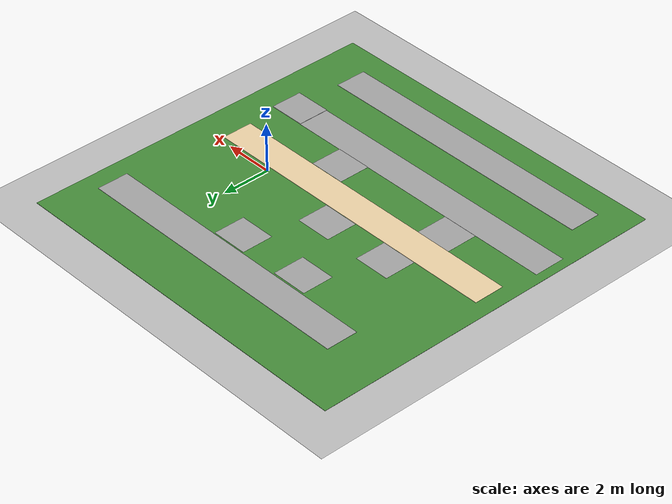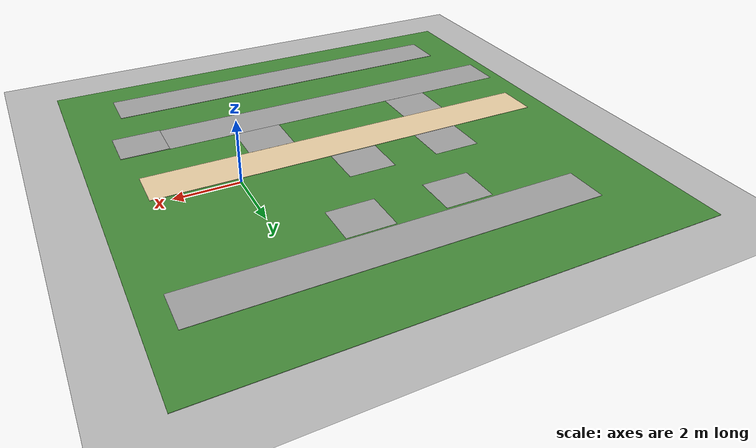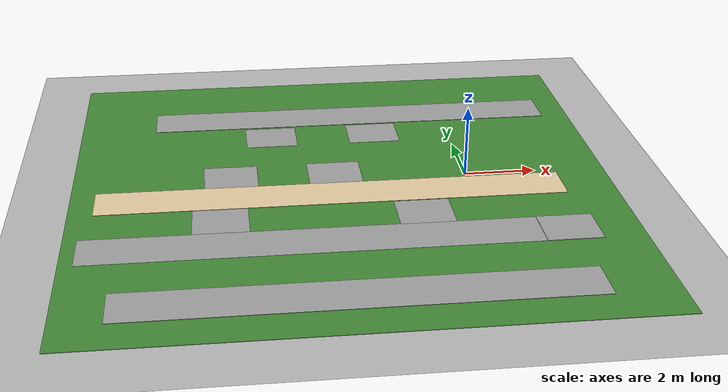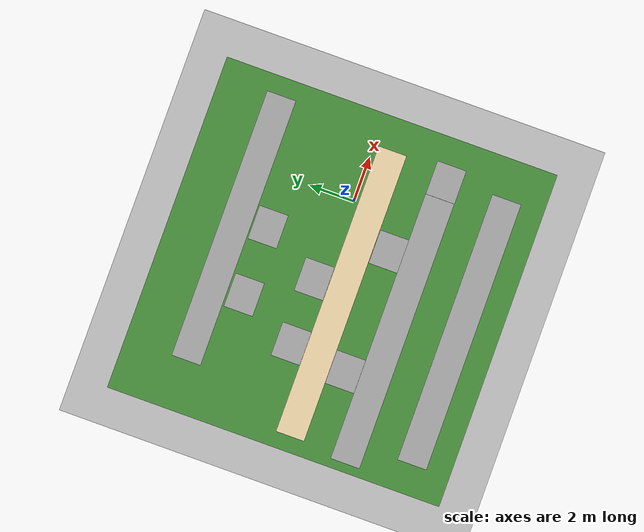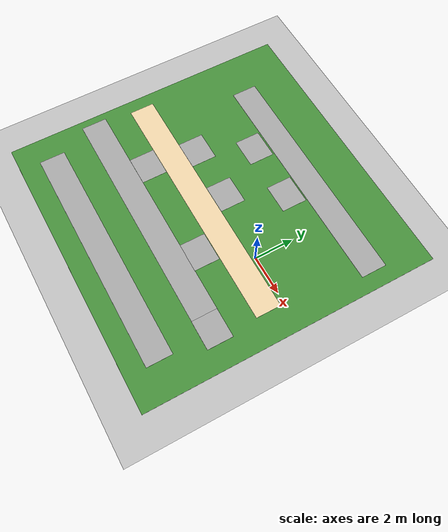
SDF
<sdf version="1.7">
 <world name="default">
  <light name="sun" type="directional">
   <pose>0 0 10 0 -0 0</pose>
   <diffuse>0.8 0.8 0.8 1</diffuse>
   <specular>0.2 0.2 0.2 1</specular>
   <attenuation>
    <range>1000</range>
    <constant>0.9</constant>
    <linear>0.01</linear>
    <quadratic>0.001</quadratic>
   </attenuation>
   <direction>-0.5 0.1 -0.9</direction>
   <spot><inner_angle>0</inner_angle><outer_angle>0</outer_angle><falloff>0</falloff></spot>
  </light>
  <model name="ground_plane">
   <static>1</static>
   <link name="link">
    <collision name="collision">
     <geometry><plane><normal>0 0 1</normal><size>100 100</size></plane></geometry>
     <surface>
      <contact><collide_bitmask>65535</collide_bitmask></contact>
      <friction><ode><mu>100</mu><mu2>50</mu2></ode></friction>
     </surface>
    </collision>
    <visual name="visual">
     <cast_shadows>0</cast_shadows>
     <geometry><plane><normal>0 0 1</normal><size>100 100</size></plane></geometry>
     <material>
      <script><uri>file://media/materials/scripts/gazebo.material</uri><name>Gazebo/Grey</name></script>
     </material>
    </visual>
   </link>
  </model>
  <gravity>0 0 -9.8</gravity>
  <magnetic_field>6e-06 2.3e-05 -4.2e-05</magnetic_field>
  <atmosphere type="adiabatic"/>
  <physics type="ode">
   <max_step_size>0.001</max_step_size>
   <real_time_factor>1</real_time_factor>
   <real_time_update_rate>1000</real_time_update_rate>
  </physics>
  <scene><ambient>0.4 0.4 0.4 1</ambient><background>0.7 0.7 0.7 1</background><shadows>1</shadows></scene>
  <spherical_coordinates>
   <surface_model>EARTH_WGS84</surface_model>
   <latitude_deg>0</latitude_deg>
   <longitude_deg>0</longitude_deg>
   <elevation>0</elevation>
   <heading_deg>0</heading_deg>
  </spherical_coordinates>
  <model name="rigid_surface">
   <link name="link">
    <inertial>
     <mass>1</mass>
     <inertia>
      <ixx>0.166667</ixx>
      <ixy>0</ixy>
      <ixz>0</ixz>
      <iyy>0.166667</iyy>
      <iyz>0</iyz>
      <izz>0.166667</izz>
     </inertia>
    </inertial>
    <visual name="visual">
     <geometry><box><size>1.5 1.3 0.02</size></box></geometry>
     <material>
      <script><name>Gazebo/CoM</name><uri>file://media/materials/scripts/gazebo.material</uri></script>
      <shader type="pixel"><normal_map>__default__</normal_map></shader>
      <ambient>0.3 0.3 0.3 1</ambient>
      <diffuse>0.7 0.7 0.7 1</diffuse>
      <specular>0.01 0.01 0.01 1</specular>
      <emissive>0 0 0 1</emissive>
     </material>
    </visual>
    <collision name="collision">
     <geometry><box><size>1.5 1.3 0.02</size></box></geometry>
     <surface>
      <friction>
       <ode><mu>1</mu><mu2>1</mu2><fdir1>0 0 0</fdir1><slip1>0</slip1><slip2>0</slip2></ode>
       <torsional>
        <coefficient>1</coefficient>
        <patch_radius>0</patch_radius>
        <surface_radius>0</surface_radius>
        <use_patch_radius>1</use_patch_radius>
        <ode><slip>0</slip></ode>
       </torsional>
      </friction>
      <bounce><restitution_coefficient>0</restitution_coefficient><threshold>1e+06</threshold></bounce>
      <contact>
       <collide_without_contact>0</collide_without_contact>
       <collide_without_contact_bitmask>1</collide_without_contact_bitmask>
       <collide_bitmask>1</collide_bitmask>
       <ode>
        <soft_cfm>0</soft_cfm>
        <soft_erp>0.2</soft_erp>
        <kp>1e+13</kp>
        <kd>1</kd>
        <max_vel>0.01</max_vel>
        <min_depth>0</min_depth>
       </ode>
       <bullet>
        <split_impulse>1</split_impulse>
        <split_impulse_penetration_threshold>-0.01</split_impulse_penetration_threshold>
        <soft_cfm>0</soft_cfm>
        <soft_erp>0.2</soft_erp>
        <kp>1e+13</kp>
        <kd>1</kd>
       </bullet>
      </contact>
     </surface>
    </collision>
   </link>
   <static>1</static>
   <pose>2.09076 -3.42533 0.016356 0 1e-05 0</pose>
  </model>
  <model name="rigid_surface_0">
   <link name="link">
    <inertial>
     <mass>1</mass>
     <inertia>
      <ixx>0.166667</ixx>
      <ixy>0</ixy>
      <ixz>0</ixz>
      <iyy>0.166667</iyy>
      <iyz>0</iyz>
      <izz>0.166667</izz>
     </inertia>
    </inertial>
    <visual name="visual">
     <geometry><box><size>1.5 1.3 0.02</size></box></geometry>
     <material>
      <script><name>Gazebo/CoM</name><uri>file://media/materials/scripts/gazebo.material</uri></script>
      <shader type="pixel"><normal_map>__default__</normal_map></shader>
      <ambient>0.3 0.3 0.3 1</ambient>
      <diffuse>0.7 0.7 0.7 1</diffuse>
      <specular>0.01 0.01 0.01 1</specular>
      <emissive>0 0 0 1</emissive>
     </material>
    </visual>
    <collision name="collision">
     <geometry><box><size>1.5 1.3 0.02</size></box></geometry>
     <surface>
      <friction>
       <ode><mu>1</mu><mu2>1</mu2><fdir1>0 0 0</fdir1><slip1>0</slip1><slip2>0</slip2></ode>
       <torsional>
        <coefficient>1</coefficient>
        <patch_radius>0</patch_radius>
        <surface_radius>0</surface_radius>
        <use_patch_radius>1</use_patch_radius>
        <ode><slip>0</slip></ode>
       </torsional>
      </friction>
      <bounce><restitution_coefficient>0</restitution_coefficient><threshold>1e+06</threshold></bounce>
      <contact>
       <collide_without_contact>0</collide_without_contact>
       <collide_without_contact_bitmask>1</collide_without_contact_bitmask>
       <collide_bitmask>1</collide_bitmask>
       <ode>
        <soft_cfm>0</soft_cfm>
        <soft_erp>0.2</soft_erp>
        <kp>1e+13</kp>
        <kd>1</kd>
        <max_vel>0.01</max_vel>
        <min_depth>0</min_depth>
       </ode>
       <bullet>
        <split_impulse>1</split_impulse>
        <split_impulse_penetration_threshold>-0.01</split_impulse_penetration_threshold>
        <soft_cfm>0</soft_cfm>
        <soft_erp>0.2</soft_erp>
        <kp>1e+13</kp>
        <kd>1</kd>
       </bullet>
      </contact>
     </surface>
    </collision>
   </link>
   <static>1</static>
   <pose>-6.95943 -2.11349 0 0 -0 0</pose>
  </model>
  <model name="rigid_surface_1">
   <link name="link">
    <inertial>
     <mass>1</mass>
     <inertia>
      <ixx>0.166667</ixx>
      <ixy>0</ixy>
      <ixz>0</ixz>
      <iyy>0.166667</iyy>
      <iyz>0</iyz>
      <izz>0.166667</izz>
     </inertia>
    </inertial>
    <visual name="visual">
     <geometry><box><size>1.5 1.3 0.02</size></box></geometry>
     <material>
      <script><name>Gazebo/CoM</name><uri>file://media/materials/scripts/gazebo.material</uri></script>
      <shader type="pixel"><normal_map>__default__</normal_map></shader>
      <ambient>0.3 0.3 0.3 1</ambient>
      <diffuse>0.7 0.7 0.7 1</diffuse>
      <specular>0.01 0.01 0.01 1</specular>
      <emissive>0 0 0 1</emissive>
     </material>
    </visual>
    <collision name="collision">
     <geometry><box><size>1.5 1.3 0.02</size></box></geometry>
     <surface>
      <friction>
       <ode><mu>1</mu><mu2>1</mu2><fdir1>0 0 0</fdir1><slip1>0</slip1><slip2>0</slip2></ode>
       <torsional>
        <coefficient>1</coefficient>
        <patch_radius>0</patch_radius>
        <surface_radius>0</surface_radius>
        <use_patch_radius>1</use_patch_radius>
        <ode><slip>0</slip></ode>
       </torsional>
      </friction>
      <bounce><restitution_coefficient>0</restitution_coefficient><threshold>1e+06</threshold></bounce>
      <contact>
       <collide_without_contact>0</collide_without_contact>
       <collide_without_contact_bitmask>1</collide_without_contact_bitmask>
       <collide_bitmask>1</collide_bitmask>
       <ode>
        <soft_cfm>0</soft_cfm>
        <soft_erp>0.2</soft_erp>
        <kp>1e+13</kp>
        <kd>1</kd>
        <max_vel>0.01</max_vel>
        <min_depth>0</min_depth>
       </ode>
       <bullet>
        <split_impulse>1</split_impulse>
        <split_impulse_penetration_threshold>-0.01</split_impulse_penetration_threshold>
        <soft_cfm>0</soft_cfm>
        <soft_erp>0.2</soft_erp>
        <kp>1e+13</kp>
        <kd>1</kd>
       </bullet>
      </contact>
     </surface>
    </collision>
   </link>
   <static>1</static>
   <pose>-1.51533 -2.12704 0 0 -0 0</pose>
  </model>
  <model name="rigid_surface_2">
   <link name="link">
    <inertial>
     <mass>1</mass>
     <inertia>
      <ixx>0.166667</ixx>
      <ixy>0</ixy>
      <ixz>0</ixz>
      <iyy>0.166667</iyy>
      <iyz>0</iyz>
      <izz>0.166667</izz>
     </inertia>
    </inertial>
    <visual name="visual">
     <geometry><box><size>1.5 1.3 0.02</size></box></geometry>
     <material>
      <script><name>Gazebo/CoM</name><uri>file://media/materials/scripts/gazebo.material</uri></script>
      <shader type="pixel"><normal_map>__default__</normal_map></shader>
      <ambient>0.3 0.3 0.3 1</ambient>
      <diffuse>0.7 0.7 0.7 1</diffuse>
      <specular>0.01 0.01 0.01 1</specular>
      <emissive>0 0 0 1</emissive>
     </material>
    </visual>
    <collision name="collision">
     <geometry><box><size>1.5 1.3 0.02</size></box></geometry>
     <surface>
      <friction>
       <ode><mu>1</mu><mu2>1</mu2><fdir1>0 0 0</fdir1><slip1>0</slip1><slip2>0</slip2></ode>
       <torsional>
        <coefficient>1</coefficient>
        <patch_radius>0</patch_radius>
        <surface_radius>0</surface_radius>
        <use_patch_radius>1</use_patch_radius>
        <ode><slip>0</slip></ode>
       </torsional>
      </friction>
      <bounce><restitution_coefficient>0</restitution_coefficient><threshold>1e+06</threshold></bounce>
      <contact>
       <collide_without_contact>0</collide_without_contact>
       <collide_without_contact_bitmask>1</collide_without_contact_bitmask>
       <collide_bitmask>1</collide_bitmask>
       <ode>
        <soft_cfm>0</soft_cfm>
        <soft_erp>0.2</soft_erp>
        <kp>1e+13</kp>
        <kd>1</kd>
        <max_vel>0.01</max_vel>
        <min_depth>0</min_depth>
       </ode>
       <bullet>
        <split_impulse>1</split_impulse>
        <split_impulse_penetration_threshold>-0.01</split_impulse_penetration_threshold>
        <soft_cfm>0</soft_cfm>
        <soft_erp>0.2</soft_erp>
        <kp>1e+13</kp>
        <kd>1</kd>
       </bullet>
      </contact>
     </surface>
    </collision>
   </link>
   <static>1</static>
   <pose>-3.68471 0.469303 0 0 -0 0</pose>
  </model>
  <model name="rigid_surface_3">
   <link name="link">
    <inertial>
     <mass>1</mass>
     <inertia>
      <ixx>0.166667</ixx>
      <ixy>0</ixy>
      <ixz>0</ixz>
      <iyy>0.166667</iyy>
      <iyz>0</iyz>
      <izz>0.166667</izz>
     </inertia>
    </inertial>
    <visual name="visual">
     <geometry><box><size>1.5 1.3 0.02</size></box></geometry>
     <material>
      <script><name>Gazebo/CoM</name><uri>file://media/materials/scripts/gazebo.material</uri></script>
      <shader type="pixel"><normal_map>__default__</normal_map></shader>
      <ambient>0.3 0.3 0.3 1</ambient>
      <diffuse>0.7 0.7 0.7 1</diffuse>
      <specular>0.01 0.01 0.01 1</specular>
      <emissive>0 0 0 1</emissive>
     </material>
    </visual>
    <collision name="collision">
     <geometry><box><size>1.5 1.3 0.02</size></box></geometry>
     <surface>
      <friction>
       <ode><mu>1</mu><mu2>1</mu2><fdir1>0 0 0</fdir1><slip1>0</slip1><slip2>0</slip2></ode>
       <torsional>
        <coefficient>1</coefficient>
        <patch_radius>0</patch_radius>
        <surface_radius>0</surface_radius>
        <use_patch_radius>1</use_patch_radius>
        <ode><slip>0</slip></ode>
       </torsional>
      </friction>
      <bounce><restitution_coefficient>0</restitution_coefficient><threshold>1e+06</threshold></bounce>
      <contact>
       <collide_without_contact>0</collide_without_contact>
       <collide_without_contact_bitmask>1</collide_without_contact_bitmask>
       <collide_bitmask>1</collide_bitmask>
       <ode>
        <soft_cfm>0</soft_cfm>
        <soft_erp>0.2</soft_erp>
        <kp>1e+13</kp>
        <kd>1</kd>
        <max_vel>0.01</max_vel>
        <min_depth>0</min_depth>
       </ode>
       <bullet>
        <split_impulse>1</split_impulse>
        <split_impulse_penetration_threshold>-0.01</split_impulse_penetration_threshold>
        <soft_cfm>0</soft_cfm>
        <soft_erp>0.2</soft_erp>
        <kp>1e+13</kp>
        <kd>1</kd>
       </bullet>
      </contact>
     </surface>
    </collision>
   </link>
   <static>1</static>
   <pose>-6.61521 0.463482 0 0 -0 0</pose>
  </model>
  <model name="rigid_surface_4">
   <link name="link">
    <inertial>
     <mass>1</mass>
     <inertia>
      <ixx>0.166667</ixx>
      <ixy>0</ixy>
      <ixz>0</ixz>
      <iyy>0.166667</iyy>
      <iyz>0</iyz>
      <izz>0.166667</izz>
     </inertia>
    </inertial>
    <visual name="visual">
     <geometry><box><size>1.5 1.3 0.02</size></box></geometry>
     <material>
      <script><name>Gazebo/CoM</name><uri>file://media/materials/scripts/gazebo.material</uri></script>
      <shader type="pixel"><normal_map>__default__</normal_map></shader>
      <ambient>0.3 0.3 0.3 1</ambient>
      <diffuse>0.7 0.7 0.7 1</diffuse>
      <specular>0.01 0.01 0.01 1</specular>
      <emissive>0 0 0 1</emissive>
     </material>
    </visual>
    <collision name="collision">
     <geometry><box><size>1.5 1.3 0.02</size></box></geometry>
     <surface>
      <friction>
       <ode><mu>1</mu><mu2>1</mu2><fdir1>0 0 0</fdir1><slip1>0</slip1><slip2>0</slip2></ode>
       <torsional>
        <coefficient>1</coefficient>
        <patch_radius>0</patch_radius>
        <surface_radius>0</surface_radius>
        <use_patch_radius>1</use_patch_radius>
        <ode><slip>0</slip></ode>
       </torsional>
      </friction>
      <bounce><restitution_coefficient>0</restitution_coefficient><threshold>1e+06</threshold></bounce>
      <contact>
       <collide_without_contact>0</collide_without_contact>
       <collide_without_contact_bitmask>1</collide_without_contact_bitmask>
       <collide_bitmask>1</collide_bitmask>
       <ode>
        <soft_cfm>0</soft_cfm>
        <soft_erp>0.2</soft_erp>
        <kp>1e+13</kp>
        <kd>1</kd>
        <max_vel>0.01</max_vel>
        <min_depth>0</min_depth>
       </ode>
       <bullet>
        <split_impulse>1</split_impulse>
        <split_impulse_penetration_threshold>-0.01</split_impulse_penetration_threshold>
        <soft_cfm>0</soft_cfm>
        <soft_erp>0.2</soft_erp>
        <kp>1e+13</kp>
        <kd>1</kd>
       </bullet>
      </contact>
     </surface>
    </collision>
   </link>
   <static>1</static>
   <pose>-5.33596 3.05973 0 0 -0 0</pose>
  </model>
  <model name="rigid_surface_5">
   <link name="link">
    <inertial>
     <mass>1</mass>
     <inertia>
      <ixx>0.166667</ixx>
      <ixy>0</ixy>
      <ixz>0</ixz>
      <iyy>0.166667</iyy>
      <iyz>0</iyz>
      <izz>0.166667</izz>
     </inertia>
    </inertial>
    <visual name="visual">
     <geometry><box><size>1.5 1.3 0.02</size></box></geometry>
     <material>
      <script><name>Gazebo/CoM</name><uri>file://media/materials/scripts/gazebo.material</uri></script>
      <shader type="pixel"><normal_map>__default__</normal_map></shader>
      <ambient>0.3 0.3 0.3 1</ambient>
      <diffuse>0.7 0.7 0.7 1</diffuse>
      <specular>0.01 0.01 0.01 1</specular>
      <emissive>0 0 0 1</emissive>
     </material>
    </visual>
    <collision name="collision">
     <geometry><box><size>1.5 1.3 0.02</size></box></geometry>
     <surface>
      <friction>
       <ode><mu>1</mu><mu2>1</mu2><fdir1>0 0 0</fdir1><slip1>0</slip1><slip2>0</slip2></ode>
       <torsional>
        <coefficient>1</coefficient>
        <patch_radius>0</patch_radius>
        <surface_radius>0</surface_radius>
        <use_patch_radius>1</use_patch_radius>
        <ode><slip>0</slip></ode>
       </torsional>
      </friction>
      <bounce><restitution_coefficient>0</restitution_coefficient><threshold>1e+06</threshold></bounce>
      <contact>
       <collide_without_contact>0</collide_without_contact>
       <collide_without_contact_bitmask>1</collide_without_contact_bitmask>
       <collide_bitmask>1</collide_bitmask>
       <ode>
        <soft_cfm>0</soft_cfm>
        <soft_erp>0.2</soft_erp>
        <kp>1e+13</kp>
        <kd>1</kd>
        <max_vel>0.01</max_vel>
        <min_depth>0</min_depth>
       </ode>
       <bullet>
        <split_impulse>1</split_impulse>
        <split_impulse_penetration_threshold>-0.01</split_impulse_penetration_threshold>
        <soft_cfm>0</soft_cfm>
        <soft_erp>0.2</soft_erp>
        <kp>1e+13</kp>
        <kd>1</kd>
       </bullet>
      </contact>
     </surface>
    </collision>
   </link>
   <static>1</static>
   <pose>-2.26883 3.08034 0 0 -0 0</pose>
  </model>
  <model name="testConcrete">
   <link name="link_0">
    <inertial>
     <mass>1</mass>
     <inertia>
      <ixx>0.166667</ixx>
      <ixy>0</ixy>
      <ixz>0</ixz>
      <iyy>0.166667</iyy>
      <iyz>0</iyz>
      <izz>0.166667</izz>
     </inertia>
    </inertial>
    <visual name="visual">
     <geometry><box><size>12 1.3 0.02</size></box></geometry>
     <material>
      <lighting>1</lighting>
      <script><uri>file://media/materials/scripts/gazebo.material</uri><name>Gazebo/Motorway</name></script>
      <shader type="pixel"><normal_map>__default__</normal_map></shader>
      <ambient>0.3 0.3 0.3 1</ambient>
      <diffuse>0.7 0.7 0.7 1</diffuse>
      <specular>0.01 0.01 0.01 1</specular>
      <emissive>0 0 0 1</emissive>
     </material>
    </visual>
    <collision name="collision">
     <geometry><box><size>12 1.3 0.02</size></box></geometry>
     <surface>
      <friction>
       <ode><mu>1</mu><mu2>1</mu2><fdir1>0 0 0</fdir1><slip1>0</slip1><slip2>0</slip2></ode>
       <torsional>
        <coefficient>1</coefficient>
        <patch_radius>0</patch_radius>
        <surface_radius>0</surface_radius>
        <use_patch_radius>1</use_patch_radius>
        <ode><slip>0</slip></ode>
       </torsional>
      </friction>
      <bounce><restitution_coefficient>0</restitution_coefficient><threshold>1e+06</threshold></bounce>
      <contact>
       <collide_without_contact>0</collide_without_contact>
       <collide_without_contact_bitmask>1</collide_without_contact_bitmask>
       <collide_bitmask>1</collide_bitmask>
       <ode>
        <soft_cfm>0</soft_cfm>
        <soft_erp>0.2</soft_erp>
        <kp>3.4e+09</kp>
        <kd>180000</kd>
        <max_vel>0.01</max_vel>
        <min_depth>0</min_depth>
       </ode>
       <bullet>
        <split_impulse>1</split_impulse>
        <split_impulse_penetration_threshold>-0.01</split_impulse_penetration_threshold>
        <soft_cfm>0</soft_cfm>
        <soft_erp>0.2</soft_erp>
        <kp>3.4e+09</kp>
        <kd>180000</kd>
       </bullet>
      </contact>
     </surface>
    </collision>
   </link>
   <static>1</static>
   <pose>-2.79488 4.4395 0.009994 2.2e-05 0 1.2e-05</pose>
  </model>
  <model name="gravelTerrain">
   <link name="link_0">
    <inertial>
     <mass>1</mass>
     <inertia>
      <ixx>0.166667</ixx>
      <ixy>0</ixy>
      <ixz>0</ixz>
      <iyy>0.166667</iyy>
      <iyz>0</iyz>
      <izz>0.166667</izz>
     </inertia>
    </inertial>
    <visual name="visual">
     <geometry><box><size>12 1.3 0.02</size></box></geometry>
     <material>
      <lighting>1</lighting>
      <script><uri>file://media/materials/scripts/gazebo.material</uri><name>Gazebo/Footway</name></script>
      <shader type="pixel"><normal_map>__default__</normal_map></shader>
      <ambient>0.3 0.3 0.3 1</ambient>
      <diffuse>0.7 0.7 0.7 1</diffuse>
      <specular>0.01 0.01 0.01 1</specular>
      <emissive>0 0 0 1</emissive>
     </material>
    </visual>
    <collision name="collision">
     <geometry><box><size>12 1.3 0.02</size></box></geometry>
     <surface>
      <friction>
       <ode><mu>1</mu><mu2>1</mu2><fdir1>0 0 0</fdir1><slip1>0</slip1><slip2>0</slip2></ode>
       <torsional>
        <coefficient>1</coefficient>
        <patch_radius>0</patch_radius>
        <surface_radius>0</surface_radius>
        <use_patch_radius>1</use_patch_radius>
        <ode><slip>0</slip></ode>
       </torsional>
      </friction>
      <bounce><restitution_coefficient>0</restitution_coefficient><threshold>1e+06</threshold></bounce>
      <contact>
       <collide_without_contact>0</collide_without_contact>
       <collide_without_contact_bitmask>1</collide_without_contact_bitmask>
       <collide_bitmask>1</collide_bitmask>
       <ode>
        <soft_cfm>0.5</soft_cfm>
        <soft_erp>0.2</soft_erp>
        <kp>2.3e+07</kp>
        <kd>14000</kd>
        <max_vel>0.01</max_vel>
        <min_depth>0</min_depth>
       </ode>
       <bullet>
        <split_impulse>1</split_impulse>
        <split_impulse_penetration_threshold>-0.01</split_impulse_penetration_threshold>
        <soft_cfm>0.5</soft_cfm>
        <soft_erp>0.2</soft_erp>
        <kp>2.3e+07</kp>
        <kd>14000</kd>
       </bullet>
      </contact>
     </surface>
    </collision>
   </link>
   <static>1</static>
   <pose>-4.63537 -3.41536 0 0 -0 0</pose>
  </model>
  <model name="sand_colored_ramp">
   <link name="link">
    <inertial>
     <mass>0.181129</mass>
     <inertia>
      <ixx>0.0151003</ixx>
      <ixy>0</ixy>
      <ixz>0</ixz>
      <iyy>1.22066</iyy>
      <iyz>0</iyz>
      <izz>1.23575</izz>
     </inertia>
    </inertial>
    <visual name="visual">
     <geometry><box><size>12.9229 1.26509 0.020184</size></box></geometry>
     <material>
      <script><name>Gazebo/Grey</name><uri>file://media/materials/scripts/gazebo.material</uri></script>
      <shader type="pixel"><normal_map>__default__</normal_map></shader>
      <ambient>1 0.89 0.709 1</ambient>
      <diffuse>0.7 0.7 0.7 1</diffuse>
      <specular>0.01 0.01 0.01 1</specular>
      <emissive>0 0 0 1</emissive>
     </material>
    </visual>
    <collision name="collision">
     <geometry><box><size>12.9229 1.26509 0.020184</size></box></geometry>
     <surface>
      <friction>
       <ode><mu>0.3</mu><mu2>0.3</mu2><fdir1>0 0 0</fdir1><slip1>0</slip1><slip2>0</slip2></ode>
       <torsional>
        <coefficient>1</coefficient>
        <patch_radius>0</patch_radius>
        <surface_radius>0</surface_radius>
        <use_patch_radius>1</use_patch_radius>
        <ode><slip>0</slip></ode>
       </torsional>
      </friction>
      <bounce><restitution_coefficient>0</restitution_coefficient><threshold>1e+06</threshold></bounce>
      <contact>
       <collide_without_contact>0</collide_without_contact>
       <collide_without_contact_bitmask>1</collide_without_contact_bitmask>
       <collide_bitmask>1</collide_bitmask>
       <ode>
        <soft_cfm>0</soft_cfm>
        <soft_erp>0.2</soft_erp>
        <kp>9.1e+06</kp>
        <kd>9000</kd>
        <max_vel>0.01</max_vel>
        <min_depth>0</min_depth>
       </ode>
       <bullet>
        <split_impulse>1</split_impulse>
        <split_impulse_penetration_threshold>-0.01</split_impulse_penetration_threshold>
        <soft_cfm>0</soft_cfm>
        <soft_erp>0.2</soft_erp>
        <kp>9.1e+06</kp>
        <kd>9000</kd>
       </bullet>
      </contact>
     </surface>
    </collision>
   </link>
   <static>1</static>
   <pose>-3.87703 -0.824605 0.010092 0 0 -0.000251</pose>
  </model>
  <model name="grasspatch">
   <static>1</static>
   <link name="link">
    <collision name="collision">
     <geometry><plane><normal>0 0 1</normal><size>15 15</size></plane></geometry>
     <surface><friction><ode><mu>0.5</mu><mu2>0.5</mu2></ode></friction></surface>
    </collision>
    <visual name="visual_s10">
     <cast_shadows>0</cast_shadows>
     <geometry><plane><normal>0 0 1</normal><size>15 15</size></plane></geometry>
     <material>
      <script>
       <uri>model://grasspatch//materials/scripts/</uri>
       <uri>model://grasspatch//materials/textures/</uri>
       <name>vrc/grass</name>
      </script>
     </material>
    </visual>
   </link>
   <pose>-3.50953 -0.296005 0 0 -0 0</pose>
  </model>
  <model name="compactClay">
   <link name="link_0">
    <inertial>
     <mass>1</mass>
     <inertia>
      <ixx>0.166667</ixx>
      <ixy>0</ixy>
      <ixz>0</ixz>
      <iyy>0.166667</iyy>
      <iyz>0</iyz>
      <izz>0.166667</izz>
     </inertia>
    </inertial>
    <visual name="visual">
     <geometry><box><size>12 1.3 0.02</size></box></geometry>
     <material>
      <lighting>1</lighting>
      <script><uri>file://media/materials/scripts/gazebo.material</uri><name>Gazebo/Motorway</name></script>
      <shader type="pixel"><normal_map>__default__</normal_map></shader>
      <ambient>0.3 0.3 0.3 1</ambient>
      <diffuse>0.7 0.7 0.7 1</diffuse>
      <specular>0.01 0.01 0.01 1</specular>
      <emissive>0 0 0 1</emissive>
     </material>
    </visual>
    <collision name="collision">
     <geometry><box><size>12 1.3 0.02</size></box></geometry>
     <surface>
      <friction>
       <ode><mu>1</mu><mu2>1</mu2><fdir1>0 0 0</fdir1><slip1>0</slip1><slip2>0</slip2></ode>
       <torsional>
        <coefficient>1</coefficient>
        <patch_radius>0</patch_radius>
        <surface_radius>0</surface_radius>
        <use_patch_radius>1</use_patch_radius>
        <ode><slip>0</slip></ode>
       </torsional>
      </friction>
      <bounce><restitution_coefficient>0</restitution_coefficient><threshold>1e+06</threshold></bounce>
      <contact>
       <collide_without_contact>0</collide_without_contact>
       <collide_without_contact_bitmask>1</collide_without_contact_bitmask>
       <collide_bitmask>1</collide_bitmask>
       <ode>
        <soft_cfm>0</soft_cfm>
        <soft_erp>0.2</soft_erp>
        <kp>1.7e+06</kp>
        <kd>3900</kd>
        <max_vel>0.01</max_vel>
        <min_depth>0</min_depth>
       </ode>
       <bullet>
        <split_impulse>1</split_impulse>
        <split_impulse_penetration_threshold>-0.01</split_impulse_penetration_threshold>
        <soft_cfm>0</soft_cfm>
        <soft_erp>0.2</soft_erp>
        <kp>1.7e+06</kp>
        <kd>3900</kd>
       </bullet>
      </contact>
     </surface>
    </collision>
   </link>
   <static>1</static>
   <pose>-3.72231 -6.11074 0.009994 2.2e-05 0 1.2e-05</pose>
  </model>
 </world>
</sdf>
